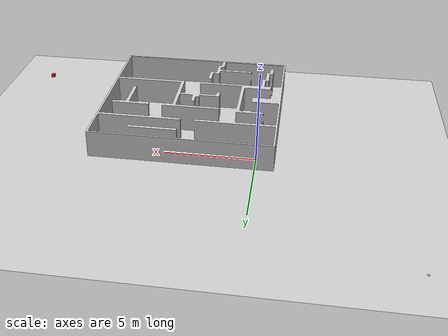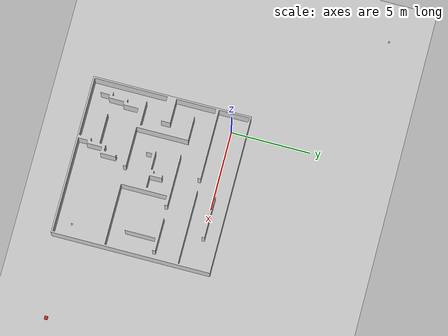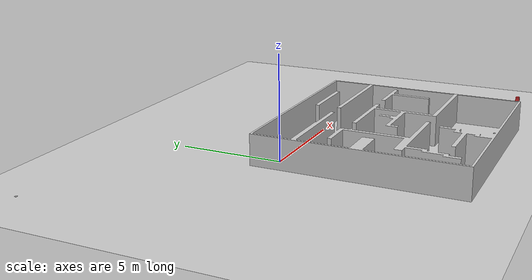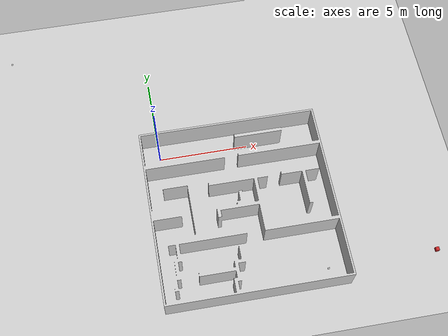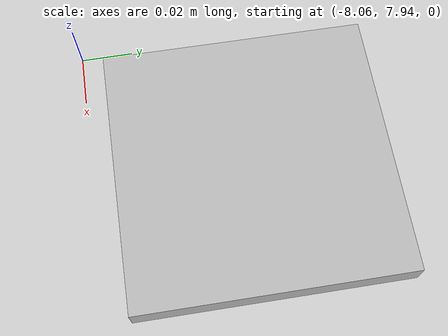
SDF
<?xml version="1.0" ?>
<sdf version="1.4">
  <world name="default">
    <include>
      <uri>model://ground_plane</uri>
    </include>
    <include>
      <uri>model://sun</uri>
    </include>

    <!-- Turn off the shadows -->
    <scene>
      <shadows>0</shadows>
    </scene>

    <!-- Only one ROS interface plugin is required per world, as any other plugin can connect a Gazebo
         topic to a ROS topic (or vise versa). -->
    <plugin name="ros_interface_plugin" filename="librotors_gazebo_ros_interface_plugin.so"/>

    <spherical_coordinates>
      <surface_model>EARTH_WGS84</surface_model>
      <latitude_deg>47.3667</latitude_deg>
      <longitude_deg>8.5500</longitude_deg>
      <elevation>500.0</elevation>
      <heading_deg>0</heading_deg>
    </spherical_coordinates>
    <physics type='ode'>
      <ode>
        <solver>
          <type>quick</type>
          <iters>10</iters>
          <sor>1.3</sor>
        </solver>
        <constraints>
          <cfm>0</cfm>
          <erp>0.2</erp>
          <contact_max_correcting_vel>1000</contact_max_correcting_vel>
          <contact_surface_layer>0.001</contact_surface_layer>
        </constraints>
      </ode>
      <max_step_size>0.001</max_step_size>
      <real_time_factor>1</real_time_factor>
      <real_time_update_rate>1000</real_time_update_rate>
      <gravity>0 0 -9.8</gravity>
    </physics>
  <model name='ground_plane'>
      <static>1</static>
      <link name='link'>
        <collision name='collision'>
          <geometry>
            <plane>
              <normal>0 0 1</normal>
              <size>100 100</size>
            </plane>
          </geometry>
          <surface>
            <contact>
              <collide_bitmask>65535</collide_bitmask>
              <ode/>
            </contact>
            <friction>
              <ode>
                <mu>100</mu>
                <mu2>50</mu2>
              </ode>
              <torsional>
                <ode/>
              </torsional>
            </friction>
            <bounce/>
          </surface>
          <max_contacts>10</max_contacts>
        </collision>
        <visual name='visual'>
          <cast_shadows>0</cast_shadows>
          <geometry>
            <plane>
              <normal>0 0 1</normal>
              <size>100 100</size>
            </plane>
          </geometry>
          <material>
            <script>
              <uri>file://media/materials/scripts/gazebo.material</uri>
              <name>Gazebo/Grey</name>
            </script>
          </material>
        </visual>
        <self_collide>0</self_collide>
        <enable_wind>0</enable_wind>
        <kinematic>0</kinematic>
      </link>
    </model>
     <include>
      <name>map</name>
      <uri>model://map</uri>
      <pose frame=''>4 -4 0.01 0 0 -1.5708</pose>
    </include>

    <include>
      <name>marker</name>
      <uri>model://marker</uri>
      <pose frame=''>8 -8 0 0 -0 0</pose>
    </include>
    <include>
      <name>marker2</name>
      <uri>model://marker2</uri>
      <pose frame=''>-8 8 0 0 -0 0</pose>
    </include>

    <include>
      <name>unit_box</name>
      <uri>model://unit_box</uri>
      <pose frame=''>14 -8 .2 0 -0 0</pose>
    </include>

  </world>
</sdf>

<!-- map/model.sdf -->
<sdf version="1.4">
  <model name="map">
    <static>true</static>
    <link name="map">
      <collision name="body_collision">
        <geometry>
         <mesh>
	    <scale>1 1 1</scale>
      	    <uri>model://map/meshes/map.dae</uri>
    	  </mesh>
	</geometry>
         <surface>
          <friction>
            <ode>
              <mu>0.5</mu>
              <mu2>.5</mu2>
            </ode>
          </friction>
        </surface>
      </collision>
      <visual name="visual">
        <cast_shadows>true</cast_shadows>
        <geometry>
          <mesh>
	    <scale>1 1 1</scale>
      	    <uri>model://map/meshes/map.dae</uri>
    	  </mesh>
        </geometry>
        <material>
	  <script>
	    <uri>model://map/materials/scripts</uri>
	    <uri>model://map/materials/textures</uri>
	    <name>map/diffuse</name>
	  </script>
        </material>
      </visual>
    </link>
  </model>
</sdf>

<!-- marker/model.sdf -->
<sdf version='1.4'>
  <model name='marker'>
    <static>false</static>
    <link name='link'>
      <collision name='collision'>
        <geometry>
          <box>
                <size>.1 .1 .01</size>
            </box>
        </geometry>
        <surface>
          <friction>
            <ode>
              <mu>0.5</mu>
              <mu2>.5</mu2>
            </ode>
          </friction>
        </surface>
      </collision>

      <visual name='visual_0'>
        <pose> 0 0 .01 0 0 0</pose>

        <cast_shadows>true</cast_shadows>
        <geometry>
          <box>
                <size>.1 .1 .01</size>
            </box>
        </geometry>
        <material>
          <script>
            <uri>model://marker/materials/scripts</uri>
            <uri>model://marker/materials/textures</uri>
            <name>marker/diffuce</name>
          </script>
        </material>
      </visual>
    </link>
  </model>
</sdf>

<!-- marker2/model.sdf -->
<sdf version='1.4'>
  <model name='marker2'>
    <static>false</static>
    <link name='link'>
      <collision name='collision'>
        <geometry>
          <box>
                <size>.1 .1 .01</size>
            </box>
        </geometry>
        <surface>
          <friction>
            <ode>
              <mu>0.5</mu>
              <mu2>.5</mu2>
            </ode>
          </friction>
        </surface>
      </collision>

      <visual name='visual_0'>
        <pose> 0 0 .01 0 0 0</pose>

        <cast_shadows>true</cast_shadows>
        <geometry>
          <box>
                <size>.1 .1 .01</size>
            </box>
        </geometry>
        <material>
          <script>
            <uri>model://marker2/materials/scripts</uri>
            <uri>model://marker2/materials/textures</uri>
            <name>marker2/diffuce</name>
          </script>
        </material>
      </visual>
    </link>
  </model>
</sdf>

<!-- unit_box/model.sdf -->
<sdf version='1.6'>
  <model name='unit_box'>
    <link name='link'>
      <inertial>
        <mass>1</mass>
        <inertia>
          <ixx>0.166667</ixx>
          <ixy>0</ixy>
          <ixz>0</ixz>
          <iyy>0.166667</iyy>
          <iyz>0</iyz>
          <izz>0.166667</izz>
        </inertia>
        <pose frame=''>0 0 0 0 -0 0</pose>
      </inertial>
      <self_collide>0</self_collide>
      <enable_wind>0</enable_wind>
      <kinematic>0</kinematic>
      <pose frame=''>0 0 0 0 -0 0</pose>
      <gravity>1</gravity>
      <visual name='visual'>
        <geometry>
          <box>
            <size>.2 .2 .2</size>
          </box>
        </geometry>
        <material>
          <script>
            <name>Gazebo/Red</name>
            <uri>file://media/materials/scripts/gazebo.material</uri>
          </script>
          <shader type='pixel'>
            <normal_map>__default__</normal_map>
          </shader>
          <ambient>1 0 0 1</ambient>
          <diffuse>1 0 0 1</diffuse>
          <specular>0.1 0.1 0.1 1</specular>
          <emissive>1 0 0 1</emissive>
        </material>
        <pose frame=''>0 0 0 0 -0 0</pose>
        <transparency>0</transparency>
        <cast_shadows>1</cast_shadows>
      </visual>
      <collision name='collision'>
        <laser_retro>0</laser_retro>
        <max_contacts>10</max_contacts>
        <pose frame=''>0 0 0 0 -0 0</pose>
        <geometry>
          <box>
            <size>.2 .2 .2</size>
          </box>
        </geometry>
        <surface>
          <friction>
            <ode>
              <mu>1</mu>
              <mu2>1</mu2>
              <fdir1>0 0 0</fdir1>
              <slip1>0</slip1>
              <slip2>0</slip2>
            </ode>
            <torsional>
              <coefficient>1</coefficient>
              <patch_radius>0</patch_radius>
              <surface_radius>0</surface_radius>
              <use_patch_radius>1</use_patch_radius>
              <ode>
                <slip>0</slip>
              </ode>
            </torsional>
          </friction>
          <bounce>
            <restitution_coefficient>0</restitution_coefficient>
            <threshold>1e+06</threshold>
          </bounce>
          <contact>
            <collide_without_contact>0</collide_without_contact>
            <collide_without_contact_bitmask>1</collide_without_contact_bitmask>
            <collide_bitmask>1</collide_bitmask>
            <ode>
              <soft_cfm>0</soft_cfm>
              <soft_erp>0.2</soft_erp>
              <kp>1e+13</kp>
              <kd>1</kd>
              <max_vel>0.01</max_vel>
              <min_depth>0</min_depth>
            </ode>
            <bullet>
              <split_impulse>1</split_impulse>
              <split_impulse_penetration_threshold>-0.01</split_impulse_penetration_threshold>
              <soft_cfm>0</soft_cfm>
              <soft_erp>0.2</soft_erp>
              <kp>1e+13</kp>
              <kd>1</kd>
            </bullet>
          </contact>
        </surface>
      </collision>
    </link>
    <static>0</static>
    <allow_auto_disable>1</allow_auto_disable>
  </model>
</sdf>
